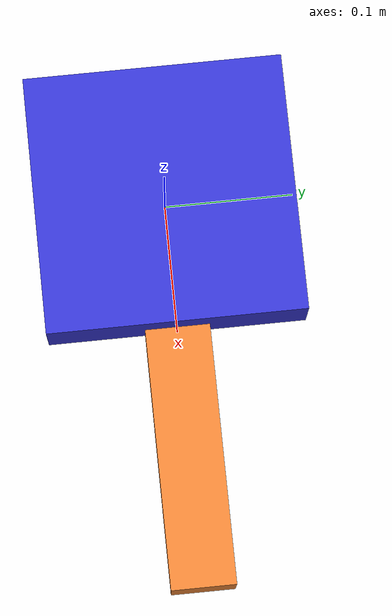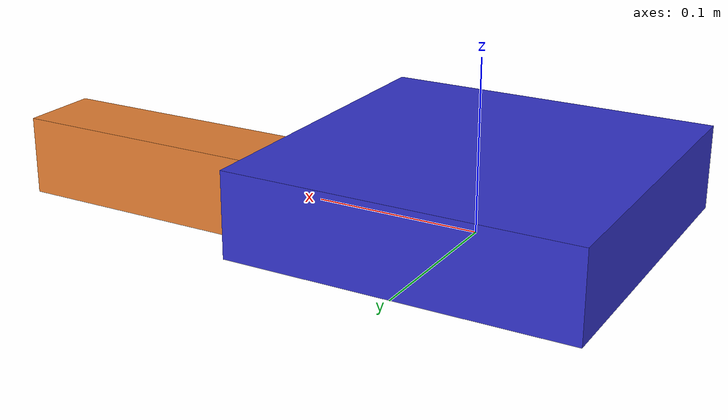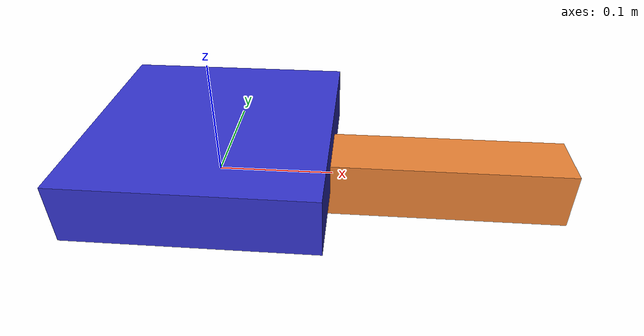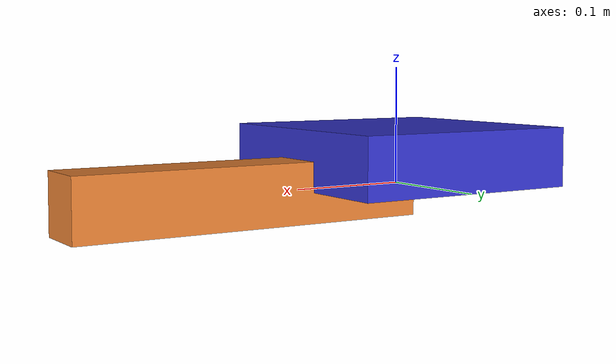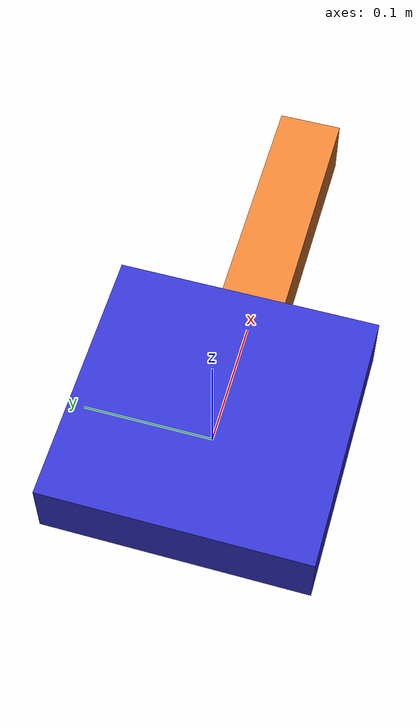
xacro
<?xml version="1.0"?>
<robot xmlns:xacro="http://www.ros.org/wiki/xacro" name="single_joint_limit_switch">
  <!-- Single-joint example that homes using a limit switch. -->
  <xacro:arg name="can_iface" default="can0"/>
  <xacro:arg name="motor_id" default="4"/>
  <xacro:arg name="limit_switch_can_id" default="385"/>
  <xacro:arg name="limit_switch_active_high" default="true"/>
  <xacro:arg name="joint_lower_limit" default="-4"/>
  <xacro:arg name="joint_upper_limit" default="4"/>
  <xacro:arg name="homing_search_direction" default="negative"/>
  <xacro:arg name="homing_position" default="0.5"/>
  <xacro:arg name="homing_approach_speed" default="0.05"/>
  <xacro:arg name="homing_backoff_speed" default="0.05"/>
  <xacro:arg name="homing_fine_speed" default="0.01"/>
  <xacro:arg name="homing_backoff_distance" default="0.05"/>
  <xacro:property name="actuator_name" value="motor$(arg motor_id)"/>

  <link name="base_link">
    <visual>
      <origin xyz="0 0 0.025" rpy="0 0 0"/>
      <geometry>
        <box size="0.2 0.2 0.05"/>
      </geometry>
      <material name="base_blue">
        <color rgba="0.2 0.2 0.8 1.0"/>
      </material>
    </visual>
  </link>

  <link name="link1">
    <visual>
      <origin xyz="0.15 0 0" rpy="0 0 0"/>
      <geometry>
        <box size="0.3 0.05 0.05"/>
      </geometry>
      <material name="link_orange">
        <color rgba="0.9 0.5 0.2 1.0"/>
      </material>
    </visual>
  </link>

  <joint name="joint1" type="revolute">
    <parent link="base_link"/>
    <child link="link1"/>
    <origin xyz="0 0 0" rpy="0 0 0"/>
    <axis xyz="0 0 1"/>
    <limit lower="$(arg joint_lower_limit)" upper="$(arg joint_upper_limit)" effort="10" velocity="1"/>
  </joint>

  <ros2_control name="CanSystem" type="system">
    <hardware>
      <plugin>mr2_can_hardware_interface/CanHW</plugin>
    </hardware>

    <joint name="joint1">
      <command_interface name="position"/>
      <state_interface name="position"/>
      <state_interface name="velocity"/>
      <state_interface name="effort"/>
      <param name="actuator">${actuator_name}</param>
      <param name="device_plugin">mr2_devices_ak_servo/AkServoDevice</param>
      <param name="motor_id">$(arg motor_id)</param>
      <param name="can_iface">$(arg can_iface)</param>
      <param name="joint_lower_limit">$(arg joint_lower_limit)</param>
      <param name="joint_upper_limit">$(arg joint_upper_limit)</param>
      <param name="homing_plugin">mr2_can_hardware_interface/LimitSwitchPolicy</param>
      <param name="homing_device_can_iface">$(arg can_iface)</param>
      <param name="homing_device_can_id">$(arg limit_switch_can_id)</param>
      <param name="homing_device_active_high">$(arg limit_switch_active_high)</param>
      <param name="homing_device_active_high">$(arg limit_switch_active_high)</param>
      <param name="homing_search_direction">$(arg homing_search_direction)</param>
      <param name="homing_position">$(arg homing_position)</param>
      <param name="homing_approach_speed">$(arg homing_approach_speed)</param>
      <param name="homing_backoff_speed">$(arg homing_backoff_speed)</param>
      <param name="homing_fine_speed">$(arg homing_fine_speed)</param>
      <param name="homing_backoff_distance">$(arg homing_backoff_distance)</param>
    </joint>

    <transmission name="joint1_transmission">
      <plugin>transmission_interface/SimpleTransmission</plugin>
      <actuator name="${actuator_name}" role="${actuator_name}">
        <command_interface name="position"/>
        <state_interface name="position"/>
        <state_interface name="velocity"/>
        <state_interface name="effort"/>
      </actuator>
      <joint name="joint1" role="joint1">
        <mechanical_reduction>1.0</mechanical_reduction>
      </joint>
    </transmission>
  </ros2_control>
</robot>
